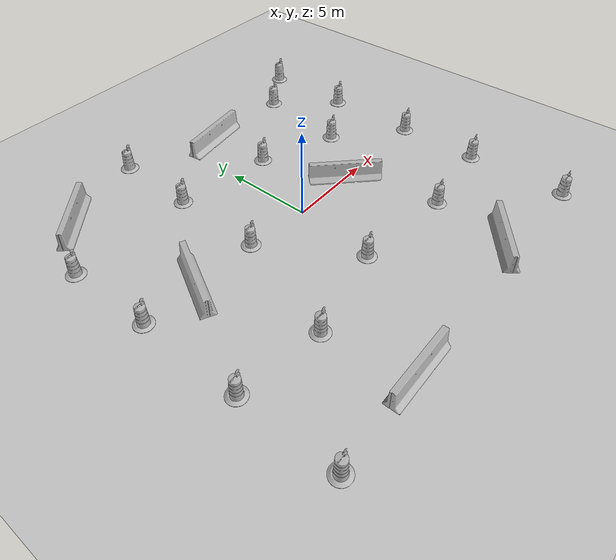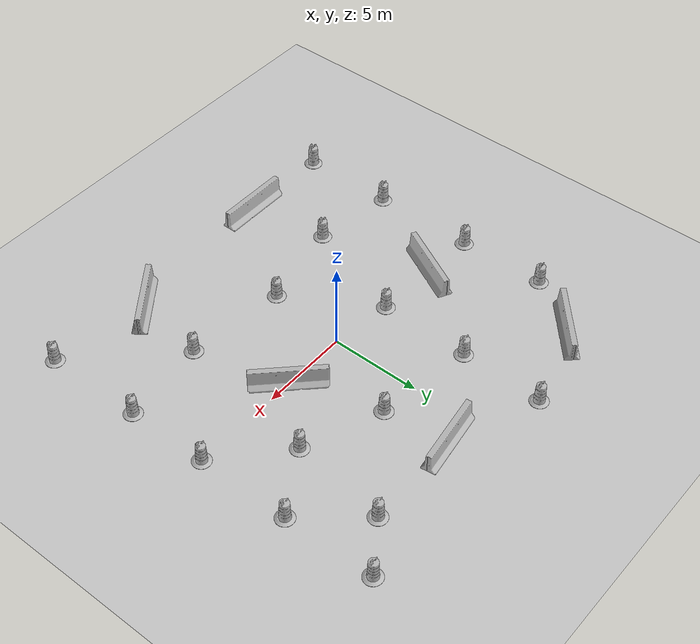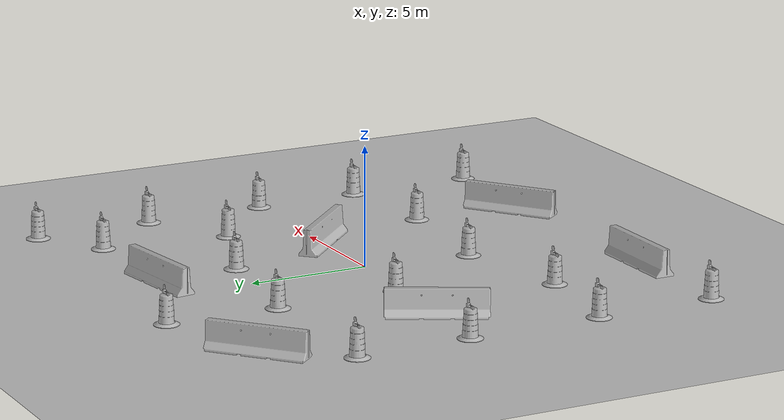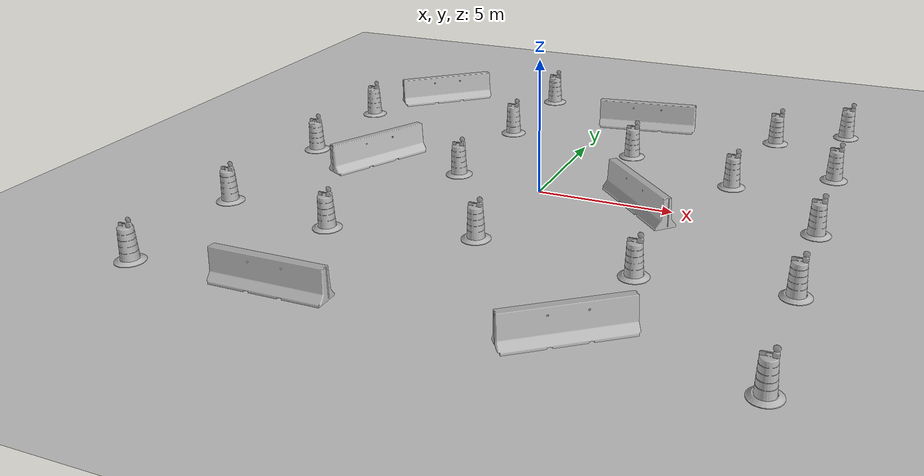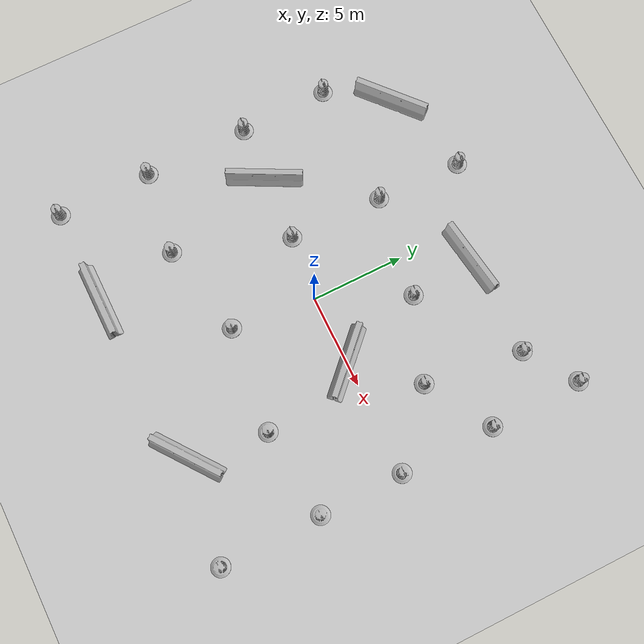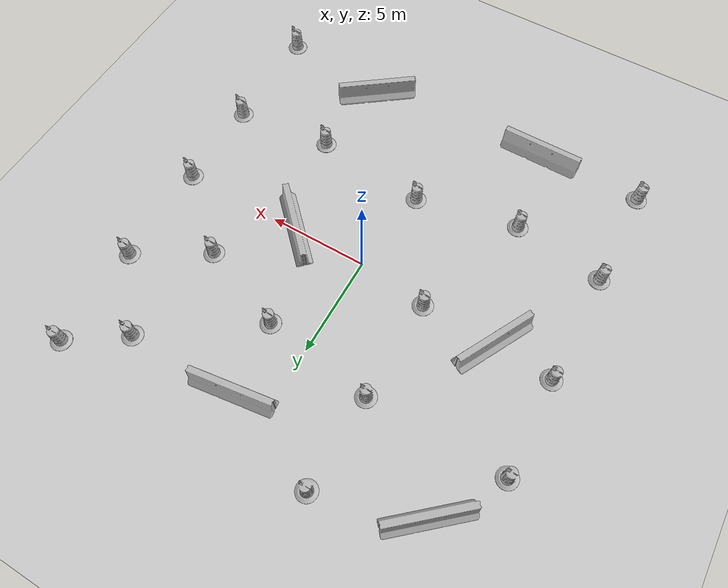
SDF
<sdf version="1.7">
 <world name="default">
  <light name="sun" type="directional">
   <pose>0 0 10 0 -0 0</pose>
   <diffuse>0.8 0.8 0.8 1</diffuse>
   <specular>0.2 0.2 0.2 1</specular>
   <attenuation>
    <range>1000</range>
    <constant>0.9</constant>
    <linear>0.01</linear>
    <quadratic>0.001</quadratic>
   </attenuation>
   <direction>-0.5 0.1 -0.9</direction>
   <spot><inner_angle>0</inner_angle><outer_angle>0</outer_angle><falloff>0</falloff></spot>
  </light>
  <model name="ground_plane">
   <static>1</static>
   <link name="link">
    <collision name="collision">
     <geometry><plane><normal>0 0 1</normal><size>100 100</size></plane></geometry>
     <surface><friction><ode><mu>100</mu><mu2>50</mu2></ode></friction></surface>
    </collision>
    <visual name="visual">
     <cast_shadows>0</cast_shadows>
     <geometry><plane><normal>0 0 1</normal><size>100 100</size></plane></geometry>
     <material>
      <script><uri>file://media/materials/scripts/gazebo.material</uri><name>Gazebo/Grey</name></script>
     </material>
    </visual>
    <velocity_decay><linear>0</linear><angular>0</angular></velocity_decay>
   </link>
  </model>
  <physics type="ode">
   <max_step_size>0.001</max_step_size>
   <real_time_factor>1</real_time_factor>
   <real_time_update_rate>1000</real_time_update_rate>
  </physics>
  <scene><ambient>0.4 0.4 0.4 1</ambient><background>0.7 0.7 0.7 1</background><shadows>1</shadows></scene>
  <spherical_coordinates>
   <surface_model>EARTH_WGS84</surface_model>
   <latitude_deg>0</latitude_deg>
   <longitude_deg>0</longitude_deg>
   <elevation>0</elevation>
   <heading_deg>0</heading_deg>
  </spherical_coordinates>
  <model name="Construction Barrel">
   <link name="link">
    <inertial>
     <pose>0 0 0.4 0 -0 0</pose>
     <mass>500</mass>
     <inertia><ixx>51.2096</ixx><iyy>51.2096</iyy><izz>25</izz><ixy>0</ixy><ixz>0</ixz><iyz>0</iyz></inertia>
    </inertial>
    <collision name="collision">
     <geometry><mesh><uri>model://construction_barrel/meshes/construction_barrel.dae</uri></mesh></geometry>
    </collision>
    <visual name="visual">
     <geometry><mesh><uri>model://construction_barrel/meshes/construction_barrel.dae</uri></mesh></geometry>
    </visual>
    <velocity_decay><linear>0</linear><angular>0</angular></velocity_decay>
   </link>
   <pose>-0.492711 -4.4794 -1e-06 1e-06 -9e-06 -0.002244</pose>
   <static>0</static>
  </model>
  <model name="Construction Barrel_0">
   <link name="link">
    <inertial>
     <pose>0 0 0.4 0 -0 0</pose>
     <mass>500</mass>
     <inertia><ixx>51.2096</ixx><iyy>51.2096</iyy><izz>25</izz><ixy>0</ixy><ixz>0</ixz><iyz>0</iyz></inertia>
    </inertial>
    <collision name="collision">
     <geometry><mesh><uri>model://construction_barrel/meshes/construction_barrel.dae</uri></mesh></geometry>
    </collision>
    <visual name="visual">
     <geometry><mesh><uri>model://construction_barrel/meshes/construction_barrel.dae</uri></mesh></geometry>
    </visual>
    <velocity_decay><linear>0</linear><angular>0</angular></velocity_decay>
   </link>
   <pose>10.0368 -10.0403 -1e-06 1e-06 -9e-06 -0.002251</pose>
   <static>0</static>
  </model>
  <model name="Construction Barrel_1">
   <link name="link">
    <inertial>
     <pose>0 0 0.4 0 -0 0</pose>
     <mass>500</mass>
     <inertia><ixx>51.2096</ixx><iyy>51.2096</iyy><izz>25</izz><ixy>0</ixy><ixz>0</ixz><iyz>0</iyz></inertia>
    </inertial>
    <collision name="collision">
     <geometry><mesh><uri>model://construction_barrel/meshes/construction_barrel.dae</uri></mesh></geometry>
    </collision>
    <visual name="visual">
     <geometry><mesh><uri>model://construction_barrel/meshes/construction_barrel.dae</uri></mesh></geometry>
    </visual>
    <velocity_decay><linear>0</linear><angular>0</angular></velocity_decay>
   </link>
   <pose>9.96158 -4.56896 -0 0 -0 -0.002203</pose>
   <static>0</static>
  </model>
  <model name="Construction Barrel_2">
   <link name="link">
    <inertial>
     <pose>0 0 0.4 0 -0 0</pose>
     <mass>500</mass>
     <inertia><ixx>51.2096</ixx><iyy>51.2096</iyy><izz>25</izz><ixy>0</ixy><ixz>0</ixz><iyz>0</iyz></inertia>
    </inertial>
    <collision name="collision">
     <geometry><mesh><uri>model://construction_barrel/meshes/construction_barrel.dae</uri></mesh></geometry>
    </collision>
    <visual name="visual">
     <geometry><mesh><uri>model://construction_barrel/meshes/construction_barrel.dae</uri></mesh></geometry>
    </visual>
    <velocity_decay><linear>0</linear><angular>0</angular></velocity_decay>
   </link>
   <pose>-3.39359 5.50525 -0 0 -0 -0.00212</pose>
   <static>0</static>
  </model>
  <model name="Construction Barrel_3">
   <link name="link">
    <inertial>
     <pose>0 0 0.4 0 -0 0</pose>
     <mass>500</mass>
     <inertia><ixx>51.2096</ixx><iyy>51.2096</iyy><izz>25</izz><ixy>0</ixy><ixz>0</ixz><iyz>0</iyz></inertia>
    </inertial>
    <collision name="collision">
     <geometry><mesh><uri>model://construction_barrel/meshes/construction_barrel.dae</uri></mesh></geometry>
    </collision>
    <visual name="visual">
     <geometry><mesh><uri>model://construction_barrel/meshes/construction_barrel.dae</uri></mesh></geometry>
    </visual>
    <velocity_decay><linear>0</linear><angular>0</angular></velocity_decay>
   </link>
   <pose>9.78425 10.1358 -0 0 -0 -0.002024</pose>
   <static>0</static>
  </model>
  <model name="Construction Barrel_4">
   <link name="link">
    <inertial>
     <pose>0 0 0.4 0 -0 0</pose>
     <mass>500</mass>
     <inertia><ixx>51.2096</ixx><iyy>51.2096</iyy><izz>25</izz><ixy>0</ixy><ixz>0</ixz><iyz>0</iyz></inertia>
    </inertial>
    <collision name="collision">
     <geometry><mesh><uri>model://construction_barrel/meshes/construction_barrel.dae</uri></mesh></geometry>
    </collision>
    <visual name="visual">
     <geometry><mesh><uri>model://construction_barrel/meshes/construction_barrel.dae</uri></mesh></geometry>
    </visual>
    <velocity_decay><linear>0</linear><angular>0</angular></velocity_decay>
   </link>
   <pose>7.15709 8.33432 0 0 0 -0.00193</pose>
   <static>0</static>
  </model>
  <model name="Construction Barrel_5">
   <link name="link">
    <inertial>
     <pose>0 0 0.4 0 -0 0</pose>
     <mass>500</mass>
     <inertia><ixx>51.2096</ixx><iyy>51.2096</iyy><izz>25</izz><ixy>0</ixy><ixz>0</ixz><iyz>0</iyz></inertia>
    </inertial>
    <collision name="collision">
     <geometry><mesh><uri>model://construction_barrel/meshes/construction_barrel.dae</uri></mesh></geometry>
    </collision>
    <visual name="visual">
     <geometry><mesh><uri>model://construction_barrel/meshes/construction_barrel.dae</uri></mesh></geometry>
    </visual>
    <velocity_decay><linear>0</linear><angular>0</angular></velocity_decay>
   </link>
   <pose>-10.1555 5.54305 -0 0 -0 -0.001887</pose>
   <static>0</static>
  </model>
  <model name="Construction Barrel_6">
   <link name="link">
    <inertial>
     <pose>0 0 0.4 0 -0 0</pose>
     <mass>500</mass>
     <inertia><ixx>51.2096</ixx><iyy>51.2096</iyy><izz>25</izz><ixy>0</ixy><ixz>0</ixz><iyz>0</iyz></inertia>
    </inertial>
    <collision name="collision">
     <geometry><mesh><uri>model://construction_barrel/meshes/construction_barrel.dae</uri></mesh></geometry>
    </collision>
    <visual name="visual">
     <geometry><mesh><uri>model://construction_barrel/meshes/construction_barrel.dae</uri></mesh></geometry>
    </visual>
    <velocity_decay><linear>0</linear><angular>0</angular></velocity_decay>
   </link>
   <pose>-3.27482 10.1302 -0 0 -0 -0.001866</pose>
   <static>0</static>
  </model>
  <model name="Construction Barrel_7">
   <link name="link">
    <inertial>
     <pose>0 0 0.4 0 -0 0</pose>
     <mass>500</mass>
     <inertia><ixx>51.2096</ixx><iyy>51.2096</iyy><izz>25</izz><ixy>0</ixy><ixz>0</ixz><iyz>0</iyz></inertia>
    </inertial>
    <collision name="collision">
     <geometry><mesh><uri>model://construction_barrel/meshes/construction_barrel.dae</uri></mesh></geometry>
    </collision>
    <visual name="visual">
     <geometry><mesh><uri>model://construction_barrel/meshes/construction_barrel.dae</uri></mesh></geometry>
    </visual>
    <velocity_decay><linear>0</linear><angular>0</angular></velocity_decay>
   </link>
   <pose>-3.49735 0.442918 -2e-06 -7e-06 -4e-06 -0.001778</pose>
   <static>0</static>
  </model>
  <model name="Construction Barrel_8">
   <link name="link">
    <inertial>
     <pose>0 0 0.4 0 -0 0</pose>
     <mass>500</mass>
     <inertia><ixx>51.2096</ixx><iyy>51.2096</iyy><izz>25</izz><ixy>0</ixy><ixz>0</ixz><iyz>0</iyz></inertia>
    </inertial>
    <collision name="collision">
     <geometry><mesh><uri>model://construction_barrel/meshes/construction_barrel.dae</uri></mesh></geometry>
    </collision>
    <visual name="visual">
     <geometry><mesh><uri>model://construction_barrel/meshes/construction_barrel.dae</uri></mesh></geometry>
    </visual>
    <velocity_decay><linear>0</linear><angular>0</angular></velocity_decay>
   </link>
   <pose>-9.9912 -9.97999 -1e-06 1e-06 -9e-06 -0.001748</pose>
   <static>0</static>
  </model>
  <model name="Construction Barrel_9">
   <link name="link">
    <inertial>
     <pose>0 0 0.4 0 -0 0</pose>
     <mass>500</mass>
     <inertia><ixx>51.2096</ixx><iyy>51.2096</iyy><izz>25</izz><ixy>0</ixy><ixz>0</ixz><iyz>0</iyz></inertia>
    </inertial>
    <collision name="collision">
     <geometry><mesh><uri>model://construction_barrel/meshes/construction_barrel.dae</uri></mesh></geometry>
    </collision>
    <visual name="visual">
     <geometry><mesh><uri>model://construction_barrel/meshes/construction_barrel.dae</uri></mesh></geometry>
    </visual>
    <velocity_decay><linear>0</linear><angular>0</angular></velocity_decay>
   </link>
   <pose>-10.0343 -4.88499 -0 0 -0 -0.001627</pose>
   <static>0</static>
  </model>
  <model name="Construction Barrel_10">
   <link name="link">
    <inertial>
     <pose>0 0 0.4 0 -0 0</pose>
     <mass>500</mass>
     <inertia><ixx>51.2096</ixx><iyy>51.2096</iyy><izz>25</izz><ixy>0</ixy><ixz>0</ixz><iyz>0</iyz></inertia>
    </inertial>
    <collision name="collision">
     <geometry><mesh><uri>model://construction_barrel/meshes/construction_barrel.dae</uri></mesh></geometry>
    </collision>
    <visual name="visual">
     <geometry><mesh><uri>model://construction_barrel/meshes/construction_barrel.dae</uri></mesh></geometry>
    </visual>
    <velocity_decay><linear>0</linear><angular>0</angular></velocity_decay>
   </link>
   <pose>-5.54368 -5.56295 0 0 0 -0.001578</pose>
   <static>0</static>
  </model>
  <model name="Construction Barrel_11">
   <link name="link">
    <inertial>
     <pose>0 0 0.4 0 -0 0</pose>
     <mass>500</mass>
     <inertia><ixx>51.2096</ixx><iyy>51.2096</iyy><izz>25</izz><ixy>0</ixy><ixz>0</ixz><iyz>0</iyz></inertia>
    </inertial>
    <collision name="collision">
     <geometry><mesh><uri>model://construction_barrel/meshes/construction_barrel.dae</uri></mesh></geometry>
    </collision>
    <visual name="visual">
     <geometry><mesh><uri>model://construction_barrel/meshes/construction_barrel.dae</uri></mesh></geometry>
    </visual>
    <velocity_decay><linear>0</linear><angular>0</angular></velocity_decay>
   </link>
   <pose>6.43612 3.04147 -2e-06 7e-06 -4e-06 -0.000904</pose>
   <static>0</static>
  </model>
  <model name="Construction Barrel_12">
   <link name="link">
    <inertial>
     <pose>0 0 0.4 0 -0 0</pose>
     <mass>500</mass>
     <inertia><ixx>51.2096</ixx><iyy>51.2096</iyy><izz>25</izz><ixy>0</ixy><ixz>0</ixz><iyz>0</iyz></inertia>
    </inertial>
    <collision name="collision">
     <geometry><mesh><uri>model://construction_barrel/meshes/construction_barrel.dae</uri></mesh></geometry>
    </collision>
    <visual name="visual">
     <geometry><mesh><uri>model://construction_barrel/meshes/construction_barrel.dae</uri></mesh></geometry>
    </visual>
    <velocity_decay><linear>0</linear><angular>0</angular></velocity_decay>
   </link>
   <pose>5.13462 -5.1147 -4e-06 -5e-06 -7e-06 -0.001463</pose>
   <static>0</static>
  </model>
  <model name="Construction Barrel_13">
   <link name="link">
    <inertial>
     <pose>0 0 0.4 0 -0 0</pose>
     <mass>500</mass>
     <inertia><ixx>51.2096</ixx><iyy>51.2096</iyy><izz>25</izz><ixy>0</ixy><ixz>0</ixz><iyz>0</iyz></inertia>
    </inertial>
    <collision name="collision">
     <geometry><mesh><uri>model://construction_barrel/meshes/construction_barrel.dae</uri></mesh></geometry>
    </collision>
    <visual name="visual">
     <geometry><mesh><uri>model://construction_barrel/meshes/construction_barrel.dae</uri></mesh></geometry>
    </visual>
    <velocity_decay><linear>0</linear><angular>0</angular></velocity_decay>
   </link>
   <pose>9.92857 -0.028259 0 0 0 -0.001406</pose>
   <static>0</static>
  </model>
  <model name="Construction Barrel_14">
   <link name="link">
    <inertial>
     <pose>0 0 0.4 0 -0 0</pose>
     <mass>500</mass>
     <inertia><ixx>51.2096</ixx><iyy>51.2096</iyy><izz>25</izz><ixy>0</ixy><ixz>0</ixz><iyz>0</iyz></inertia>
    </inertial>
    <collision name="collision">
     <geometry><mesh><uri>model://construction_barrel/meshes/construction_barrel.dae</uri></mesh></geometry>
    </collision>
    <visual name="visual">
     <geometry><mesh><uri>model://construction_barrel/meshes/construction_barrel.dae</uri></mesh></geometry>
    </visual>
    <velocity_decay><linear>0</linear><angular>0</angular></velocity_decay>
   </link>
   <pose>-10.0433 0.742874 -0 0 -0 -0.001351</pose>
   <static>0</static>
  </model>
  <model name="Construction Barrel_15">
   <link name="link">
    <inertial>
     <pose>0 0 0.4 0 -0 0</pose>
     <mass>500</mass>
     <inertia><ixx>51.2096</ixx><iyy>51.2096</iyy><izz>25</izz><ixy>0</ixy><ixz>0</ixz><iyz>0</iyz></inertia>
    </inertial>
    <collision name="collision">
     <geometry><mesh><uri>model://construction_barrel/meshes/construction_barrel.dae</uri></mesh></geometry>
    </collision>
    <visual name="visual">
     <geometry><mesh><uri>model://construction_barrel/meshes/construction_barrel.dae</uri></mesh></geometry>
    </visual>
    <velocity_decay><linear>0</linear><angular>0</angular></velocity_decay>
   </link>
   <pose>9.88759 5.12103 -4e-06 -5e-06 -7e-06 -0.001295</pose>
   <static>0</static>
  </model>
  <model name="Construction Barrel_16">
   <link name="link">
    <inertial>
     <pose>0 0 0.4 0 -0 0</pose>
     <mass>500</mass>
     <inertia><ixx>51.2096</ixx><iyy>51.2096</iyy><izz>25</izz><ixy>0</ixy><ixz>0</ixz><iyz>0</iyz></inertia>
    </inertial>
    <collision name="collision">
     <geometry><mesh><uri>model://construction_barrel/meshes/construction_barrel.dae</uri></mesh></geometry>
    </collision>
    <visual name="visual">
     <geometry><mesh><uri>model://construction_barrel/meshes/construction_barrel.dae</uri></mesh></geometry>
    </visual>
    <velocity_decay><linear>0</linear><angular>0</angular></velocity_decay>
   </link>
   <pose>2.09032 4.70547 -1e-06 3e-06 -2e-06 -0.001231</pose>
   <static>0</static>
  </model>
  <model name="jersey_barrier">
   <static>1</static>
   <link name="link">
    <visual name="visual">
     <geometry><mesh><uri>model://jersey_barrier/meshes/jersey_barrier.dae</uri></mesh></geometry>
    </visual>
    <collision name="upright">
     <pose>0 0 0.5715 0 -0 0</pose>
     <geometry><box><size>4.06542 0.3063 1.143</size></box></geometry>
    </collision>
    <collision name="base">
     <pose>0 0 0.032258 0 -0 0</pose>
     <geometry><box><size>4.06542 0.8107 0.064516</size></box></geometry>
    </collision>
    <collision name="base2">
     <pose>0 0 0.1 0 -0 0</pose>
     <geometry><box><size>4.06542 0.65 0.1</size></box></geometry>
    </collision>
    <collision name="base3">
     <pose>0 0 0.2 0 -0 0</pose>
     <geometry><box><size>4.06542 0.5 0.1</size></box></geometry>
    </collision>
    <collision name="left-angle">
     <pose>0 -0.224 0.2401 0.9 -0 0</pose>
     <geometry><box><size>4.06542 0.5 0.064516</size></box></geometry>
    </collision>
    <collision name="right-angle">
     <pose>0 0.224 0.2401 -0.9 0 0</pose>
     <geometry><box><size>4.06542 0.5 0.064516</size></box></geometry>
    </collision>
    <velocity_decay><linear>0</linear><angular>0</angular></velocity_decay>
   </link>
   <pose>1.68737 8.25395 0 0 -0 0.141449</pose>
  </model>
  <model name="jersey_barrier_0">
   <static>1</static>
   <link name="link">
    <visual name="visual">
     <geometry><mesh><uri>model://jersey_barrier/meshes/jersey_barrier.dae</uri></mesh></geometry>
    </visual>
    <collision name="upright">
     <pose>0 0 0.5715 0 -0 0</pose>
     <geometry><box><size>4.06542 0.3063 1.143</size></box></geometry>
    </collision>
    <collision name="base">
     <pose>0 0 0.032258 0 -0 0</pose>
     <geometry><box><size>4.06542 0.8107 0.064516</size></box></geometry>
    </collision>
    <collision name="base2">
     <pose>0 0 0.1 0 -0 0</pose>
     <geometry><box><size>4.06542 0.65 0.1</size></box></geometry>
    </collision>
    <collision name="base3">
     <pose>0 0 0.2 0 -0 0</pose>
     <geometry><box><size>4.06542 0.5 0.1</size></box></geometry>
    </collision>
    <collision name="left-angle">
     <pose>0 -0.224 0.2401 0.9 -0 0</pose>
     <geometry><box><size>4.06542 0.5 0.064516</size></box></geometry>
    </collision>
    <collision name="right-angle">
     <pose>0 0.224 0.2401 -0.9 0 0</pose>
     <geometry><box><size>4.06542 0.5 0.064516</size></box></geometry>
    </collision>
    <velocity_decay><linear>0</linear><angular>0</angular></velocity_decay>
   </link>
   <pose>-8.07566 8.60408 0 0 -0 0.719619</pose>
  </model>
  <model name="jersey_barrier_1">
   <static>1</static>
   <link name="link">
    <visual name="visual">
     <geometry><mesh><uri>model://jersey_barrier/meshes/jersey_barrier.dae</uri></mesh></geometry>
    </visual>
    <collision name="upright">
     <pose>0 0 0.5715 0 -0 0</pose>
     <geometry><box><size>4.06542 0.3063 1.143</size></box></geometry>
    </collision>
    <collision name="base">
     <pose>0 0 0.032258 0 -0 0</pose>
     <geometry><box><size>4.06542 0.8107 0.064516</size></box></geometry>
    </collision>
    <collision name="base2">
     <pose>0 0 0.1 0 -0 0</pose>
     <geometry><box><size>4.06542 0.65 0.1</size></box></geometry>
    </collision>
    <collision name="base3">
     <pose>0 0 0.2 0 -0 0</pose>
     <geometry><box><size>4.06542 0.5 0.1</size></box></geometry>
    </collision>
    <collision name="left-angle">
     <pose>0 -0.224 0.2401 0.9 -0 0</pose>
     <geometry><box><size>4.06542 0.5 0.064516</size></box></geometry>
    </collision>
    <collision name="right-angle">
     <pose>0 0.224 0.2401 -0.9 0 0</pose>
     <geometry><box><size>4.06542 0.5 0.064516</size></box></geometry>
    </collision>
    <velocity_decay><linear>0</linear><angular>0</angular></velocity_decay>
   </link>
   <pose>-7.08171 0.555509 0 0 -0 1.09323</pose>
  </model>
  <model name="jersey_barrier_2">
   <static>1</static>
   <link name="link">
    <visual name="visual">
     <geometry><mesh><uri>model://jersey_barrier/meshes/jersey_barrier.dae</uri></mesh></geometry>
    </visual>
    <collision name="upright">
     <pose>0 0 0.5715 0 -0 0</pose>
     <geometry><box><size>4.06542 0.3063 1.143</size></box></geometry>
    </collision>
    <collision name="base">
     <pose>0 0 0.032258 0 -0 0</pose>
     <geometry><box><size>4.06542 0.8107 0.064516</size></box></geometry>
    </collision>
    <collision name="base2">
     <pose>0 0 0.1 0 -0 0</pose>
     <geometry><box><size>4.06542 0.65 0.1</size></box></geometry>
    </collision>
    <collision name="base3">
     <pose>0 0 0.2 0 -0 0</pose>
     <geometry><box><size>4.06542 0.5 0.1</size></box></geometry>
    </collision>
    <collision name="left-angle">
     <pose>0 -0.224 0.2401 0.9 -0 0</pose>
     <geometry><box><size>4.06542 0.5 0.064516</size></box></geometry>
    </collision>
    <collision name="right-angle">
     <pose>0 0.224 0.2401 -0.9 0 0</pose>
     <geometry><box><size>4.06542 0.5 0.064516</size></box></geometry>
    </collision>
    <velocity_decay><linear>0</linear><angular>0</angular></velocity_decay>
   </link>
   <pose>-4.73134 -9.95124 0 0 -0 0</pose>
  </model>
  <model name="jersey_barrier_3">
   <static>1</static>
   <link name="link">
    <visual name="visual">
     <geometry><mesh><uri>model://jersey_barrier/meshes/jersey_barrier.dae</uri></mesh></geometry>
    </visual>
    <collision name="upright">
     <pose>0 0 0.5715 0 -0 0</pose>
     <geometry><box><size>4.06542 0.3063 1.143</size></box></geometry>
    </collision>
    <collision name="base">
     <pose>0 0 0.032258 0 -0 0</pose>
     <geometry><box><size>4.06542 0.8107 0.064516</size></box></geometry>
    </collision>
    <collision name="base2">
     <pose>0 0 0.1 0 -0 0</pose>
     <geometry><box><size>4.06542 0.65 0.1</size></box></geometry>
    </collision>
    <collision name="base3">
     <pose>0 0 0.2 0 -0 0</pose>
     <geometry><box><size>4.06542 0.5 0.1</size></box></geometry>
    </collision>
    <collision name="left-angle">
     <pose>0 -0.224 0.2401 0.9 -0 0</pose>
     <geometry><box><size>4.06542 0.5 0.064516</size></box></geometry>
    </collision>
    <collision name="right-angle">
     <pose>0 0.224 0.2401 -0.9 0 0</pose>
     <geometry><box><size>4.06542 0.5 0.064516</size></box></geometry>
    </collision>
    <velocity_decay><linear>0</linear><angular>0</angular></velocity_decay>
   </link>
   <pose>4.47723 -9.25798 0 0 -0 0.644823</pose>
  </model>
  <model name="jersey_barrier_4">
   <static>1</static>
   <link name="link">
    <visual name="visual">
     <geometry><mesh><uri>model://jersey_barrier/meshes/jersey_barrier.dae</uri></mesh></geometry>
    </visual>
    <collision name="upright">
     <pose>0 0 0.5715 0 -0 0</pose>
     <geometry><box><size>4.06542 0.3063 1.143</size></box></geometry>
    </collision>
    <collision name="base">
     <pose>0 0 0.032258 0 -0 0</pose>
     <geometry><box><size>4.06542 0.8107 0.064516</size></box></geometry>
    </collision>
    <collision name="base2">
     <pose>0 0 0.1 0 -0 0</pose>
     <geometry><box><size>4.06542 0.65 0.1</size></box></geometry>
    </collision>
    <collision name="base3">
     <pose>0 0 0.2 0 -0 0</pose>
     <geometry><box><size>4.06542 0.5 0.1</size></box></geometry>
    </collision>
    <collision name="left-angle">
     <pose>0 -0.224 0.2401 0.9 -0 0</pose>
     <geometry><box><size>4.06542 0.5 0.064516</size></box></geometry>
    </collision>
    <collision name="right-angle">
     <pose>0 0.224 0.2401 -0.9 0 0</pose>
     <geometry><box><size>4.06542 0.5 0.064516</size></box></geometry>
    </collision>
    <velocity_decay><linear>0</linear><angular>0</angular></velocity_decay>
   </link>
   <pose>3.73626 -0.005897 0 0 -0 2.35509</pose>
  </model>
  <gravity>0 0 -9.8</gravity>
  <magnetic_field>6e-06 2.3e-05 -4.2e-05</magnetic_field>
  <atmosphere type="adiabatic"/>
  <audio><device>default</device></audio>
 </world>
</sdf>
